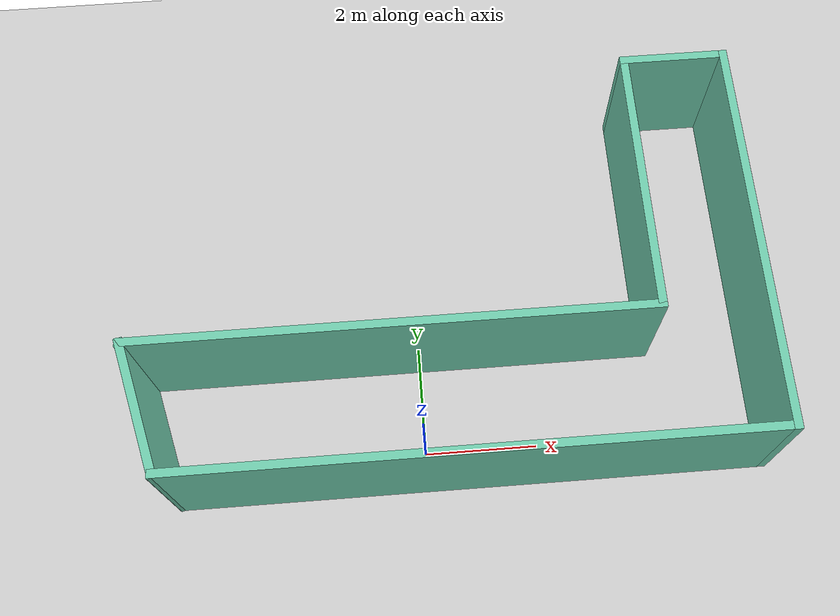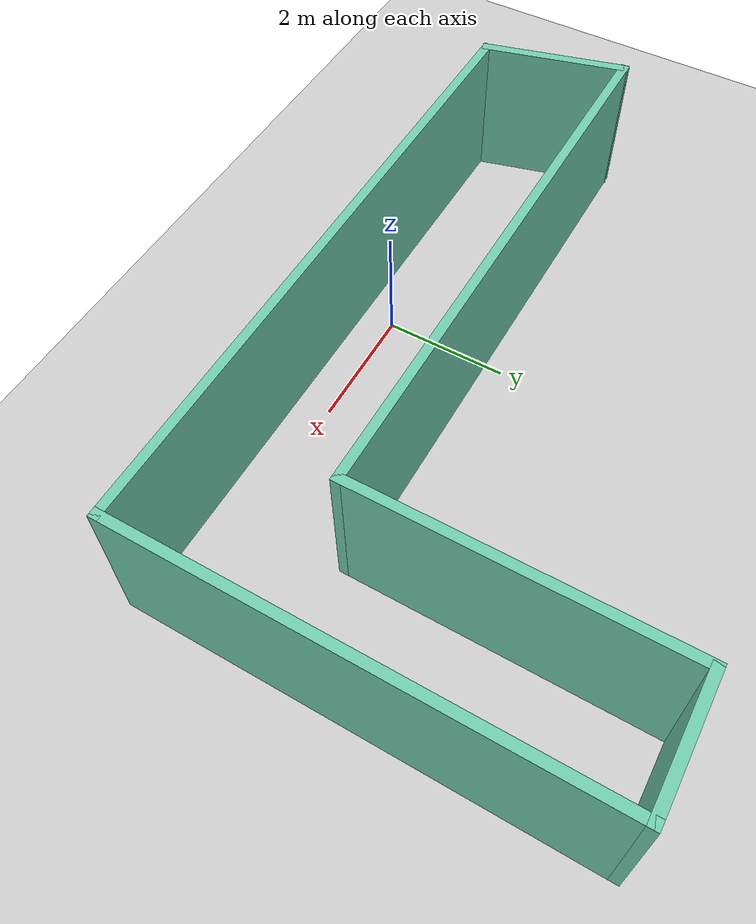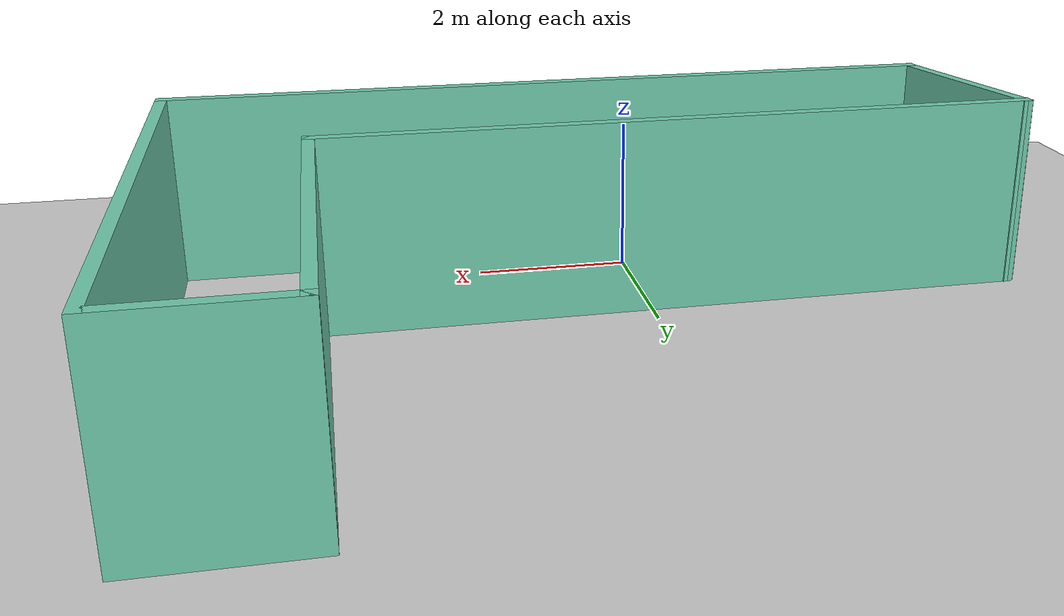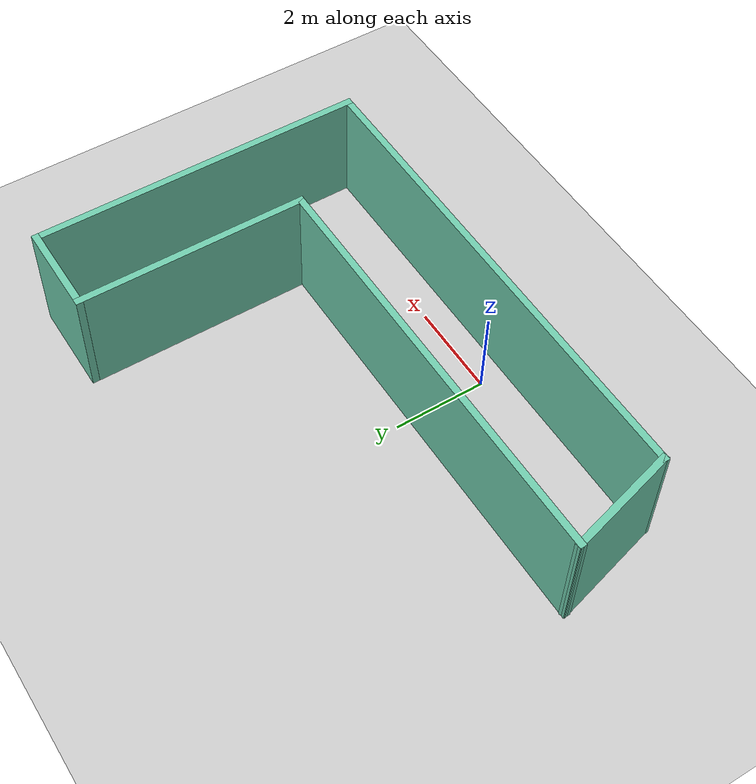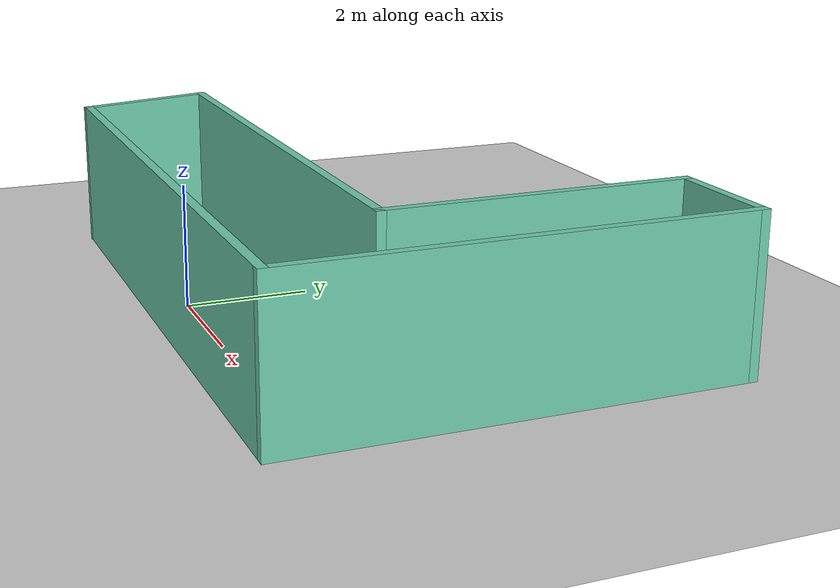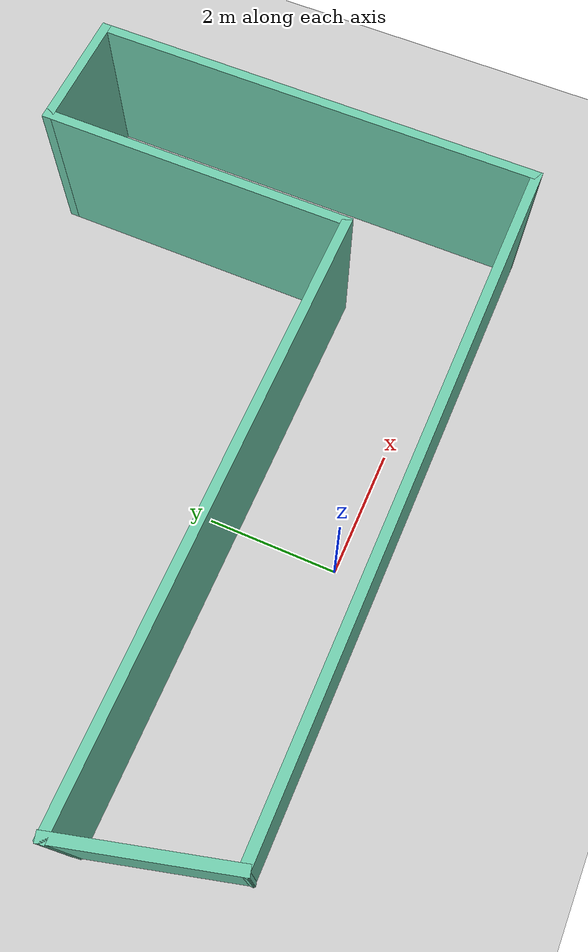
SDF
<sdf version="1.6">
 <world name="default">
  <light name="sun" type="directional">
   <pose>0 0 10 0 -0 0</pose>
   <diffuse>0.8 0.8 0.8 1</diffuse>
   <specular>0.2 0.2 0.2 1</specular>
   <attenuation>
    <range>1000</range>
    <constant>0.9</constant>
    <linear>0.01</linear>
    <quadratic>0.001</quadratic>
   </attenuation>
   <direction>-0.5 0.1 -0.9</direction>
  </light>
  <model name="ground_plane">
   <static>1</static>
   <link name="link">
    <collision name="collision">
     <geometry><plane><normal>0 0 1</normal><size>100 100</size></plane></geometry>
     <surface>
      <contact><collide_bitmask>65535</collide_bitmask></contact>
      <friction><ode><mu>100</mu><mu2>50</mu2></ode></friction>
     </surface>
    </collision>
    <visual name="visual">
     <cast_shadows>0</cast_shadows>
     <geometry><plane><normal>0 0 1</normal><size>100 100</size></plane></geometry>
     <material>
      <script><uri>file://media/materials/scripts/gazebo.material</uri><name>Gazebo/Grey</name></script>
     </material>
    </visual>
   </link>
  </model>
  <gravity>0 0 -9.8</gravity>
  <magnetic_field>6e-06 2.3e-05 -4.2e-05</magnetic_field>
  <atmosphere type="adiabatic"/>
  <physics name="default_physics" default="0" type="ode">
   <max_step_size>0.001</max_step_size>
   <real_time_factor>1</real_time_factor>
   <real_time_update_rate>1000</real_time_update_rate>
  </physics>
  <scene><ambient>0.4 0.4 0.4 1</ambient><background>0.7 0.7 0.7 1</background><shadows>1</shadows></scene>
  <spherical_coordinates>
   <surface_model>EARTH_WGS84</surface_model>
   <latitude_deg>0</latitude_deg>
   <longitude_deg>0</longitude_deg>
   <elevation>0</elevation>
   <heading_deg>0</heading_deg>
  </spherical_coordinates>
  <model name="final">
   <pose>0.522701 2.93308 0 0 -0 0</pose>
   <link name="Wall_1">
    <collision name="Wall_1_Collision">
     <geometry><box><size>10.5 0.15 2.5</size></box></geometry>
     <pose>0 0 1.25 0 -0 0</pose>
    </collision>
    <visual name="Wall_1_Visual">
     <pose>0 0 1.25 0 -0 0</pose>
     <geometry><box><size>10.5 0.15 2.5</size></box></geometry>
     <material>
      <script><uri>file://media/materials/scripts/gazebo.material</uri><name>Gazebo/Grey</name></script>
      <ambient>0.435294 0.796078 0.67451 1</ambient>
     </material>
     <meta><layer>0</layer></meta>
    </visual>
    <pose>0.308396 -3.5416 0 0 -0 0</pose>
   </link>
   <link name="Wall_2">
    <collision name="Wall_2_Collision">
     <geometry><box><size>7.25 0.15 2.5</size></box></geometry>
     <pose>0 0 1.25 0 -0 0</pose>
    </collision>
    <visual name="Wall_2_Visual">
     <pose>0 0 1.25 0 -0 0</pose>
     <geometry><box><size>7.25 0.15 2.5</size></box></geometry>
     <material>
      <script><uri>file://media/materials/scripts/gazebo.material</uri><name>Gazebo/Grey</name></script>
      <ambient>0.435294 0.796078 0.67451 1</ambient>
     </material>
     <meta><layer>0</layer></meta>
    </visual>
    <pose>5.4834 0.008396 0 0 -0 1.5708</pose>
   </link>
   <link name="Wall_3">
    <collision name="Wall_3_Collision">
     <geometry><box><size>2 0.15 2.5</size></box></geometry>
     <pose>0 0 1.25 0 -0 0</pose>
    </collision>
    <visual name="Wall_3_Visual">
     <pose>0 0 1.25 0 -0 0</pose>
     <geometry><box><size>2 0.15 2.5</size></box></geometry>
     <material>
      <script><uri>file://media/materials/scripts/gazebo.material</uri><name>Gazebo/Grey</name></script>
      <ambient>0.435294 0.796078 0.67451 1</ambient>
     </material>
     <meta><layer>0</layer></meta>
    </visual>
    <pose>4.5584 3.5584 0 0 -0 3.14159</pose>
   </link>
   <link name="Wall_4">
    <collision name="Wall_4_Collision">
     <geometry><box><size>5 0.15 2.5</size></box></geometry>
     <pose>0 0 1.25 0 -0 0</pose>
    </collision>
    <visual name="Wall_4_Visual">
     <pose>0 0 1.25 0 -0 0</pose>
     <geometry><box><size>5 0.15 2.5</size></box></geometry>
     <material>
      <script><uri>file://media/materials/scripts/gazebo.material</uri><name>Gazebo/Grey</name></script>
      <ambient>0.435294 0.796078 0.67451 1</ambient>
     </material>
     <meta><layer>0</layer></meta>
    </visual>
    <pose>3.6334 1.1334 0 0 0 -1.5708</pose>
   </link>
   <link name="Wall_5">
    <collision name="Wall_5_Collision">
     <geometry><box><size>9.25 0.15 2.5</size></box></geometry>
     <pose>0 0 1.25 0 -0 0</pose>
    </collision>
    <visual name="Wall_5_Visual">
     <pose>0 0 1.25 0 -0 0</pose>
     <geometry><box><size>9.25 0.15 2.5</size></box></geometry>
     <material>
      <script><uri>file://media/materials/scripts/gazebo.material</uri><name>Gazebo/Grey</name></script>
      <ambient>0.435294 0.796078 0.67451 1</ambient>
     </material>
     <meta><layer>0</layer></meta>
    </visual>
    <pose>-0.916604 -1.2916 0 0 -0 3.14159</pose>
   </link>
   <link name="Wall_6">
    <collision name="Wall_6_Collision">
     <geometry><box><size>2.47863 0.15 2.5</size></box></geometry>
     <pose>0 0 1.25 0 -0 0</pose>
    </collision>
    <visual name="Wall_6_Visual">
     <pose>0 0 1.25 0 -0 0</pose>
     <geometry><box><size>2.47863 0.15 2.5</size></box></geometry>
     <material>
      <script><uri>file://media/materials/scripts/gazebo.material</uri><name>Gazebo/Grey</name></script>
      <ambient>0.435294 0.796078 0.67451 1</ambient>
     </material>
     <meta><layer>0</layer></meta>
    </visual>
    <pose>-5.1666 -2.4166 0 0 0 -1.31019</pose>
   </link>
   <static>1</static>
  </model>
 </world>
</sdf>
